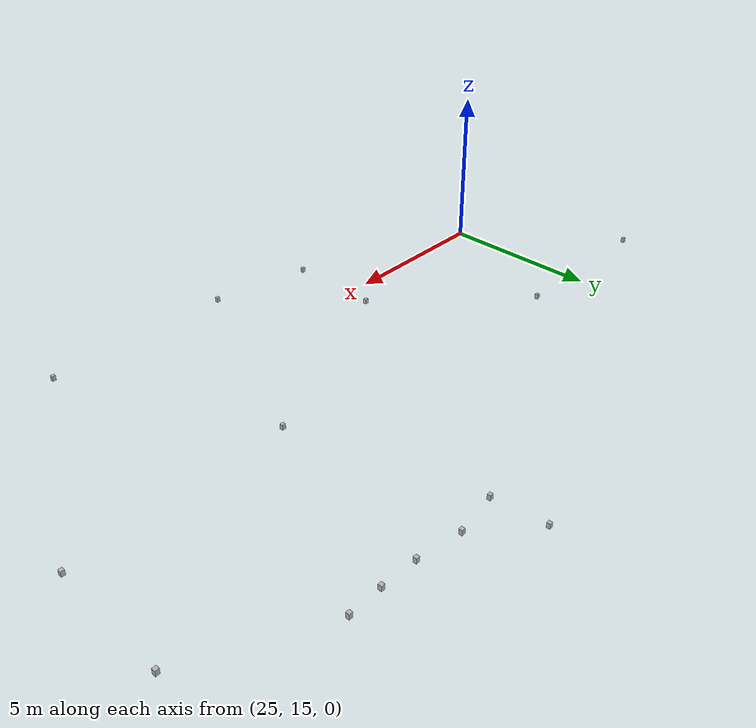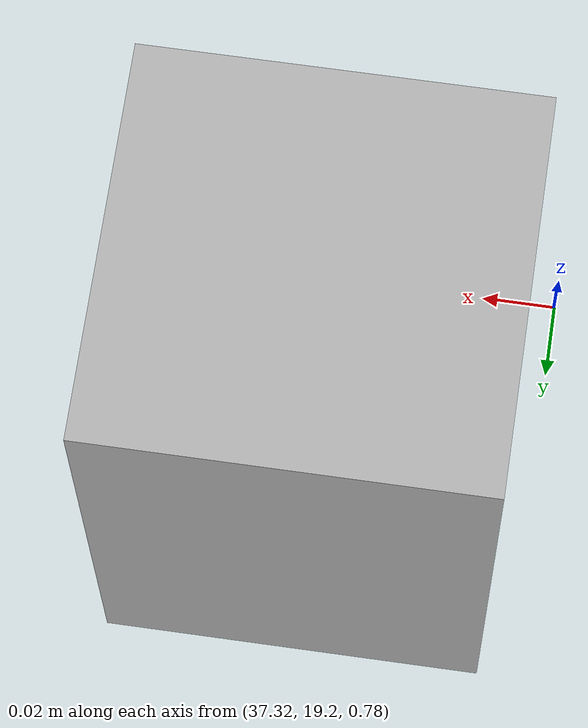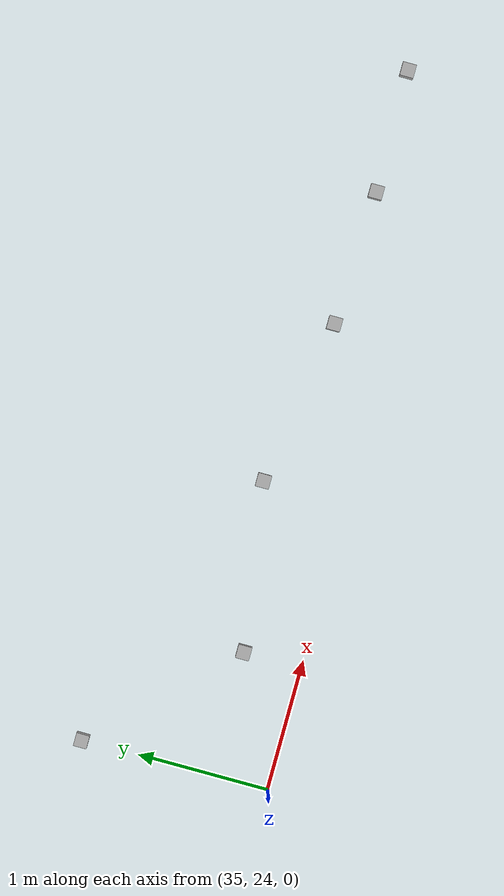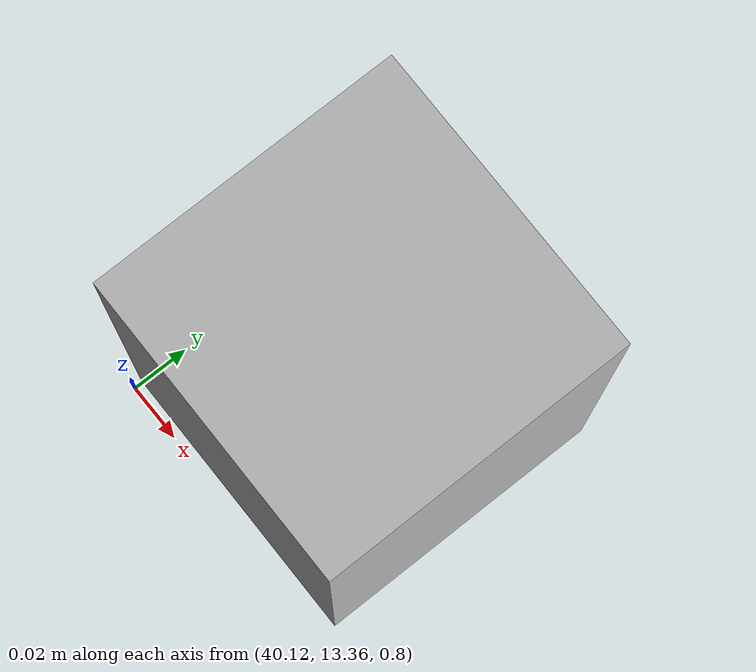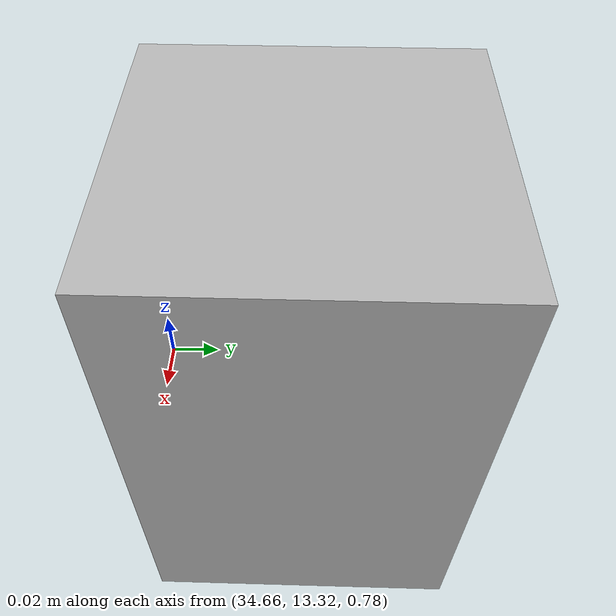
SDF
<sdf version="1.6">
 <world name="world">
  <model name="ground_plane">
   <static>1</static>
   <link name="link">
    <collision name="collision">
     <geometry><plane><normal>0 0 1</normal><size>100 100</size></plane></geometry>
     <surface><friction><ode><mu>100</mu><mu2>50</mu2></ode></friction></surface>
    </collision>
    <velocity_decay><linear>0</linear><angular>0</angular></velocity_decay>
   </link>
  </model>
  <physics name="default_physics" default="0" type="ode">
   <max_step_size>0.001</max_step_size>
   <real_time_factor>1</real_time_factor>
   <real_time_update_rate>1000</real_time_update_rate>
  </physics>
  <scene><ambient>0.4 0.4 0.4 1</ambient><background>0.7 0.7 0.7 1</background><shadows>1</shadows></scene>
  <gravity>0 0 -9.8</gravity>
  <magnetic_field>6e-06 2.3e-05 -4.2e-05</magnetic_field>
  <atmosphere type="adiabatic"/>
  <spherical_coordinates>
   <surface_model>EARTH_WGS84</surface_model>
   <latitude_deg>0</latitude_deg>
   <longitude_deg>0</longitude_deg>
   <elevation>0</elevation>
   <heading_deg>0</heading_deg>
  </spherical_coordinates>
  <light name="user_point_light_0" type="point">
   <pose>37.122 19.3882 1 0 -0 0</pose>
   <diffuse>0.5 0.5 0.5 1</diffuse>
   <specular>0.1 0.1 0.1 1</specular>
   <attenuation>
    <range>20</range>
    <constant>0.5</constant>
    <linear>0.01</linear>
    <quadratic>0.001</quadratic>
   </attenuation>
   <cast_shadows>0</cast_shadows>
   <direction>0 0 -1</direction>
  </light>
  <model name="tea_box_0">
   <link name="link">
    <pose>0 0 0.075 0 -0 0</pose>
    <inertial>
     <mass>0.39</mass>
     <inertia>
      <ixx>0.000264062</ixx>
      <ixy>0</ixy>
      <ixz>0</ixz>
      <iyy>0.000264062</iyy>
      <iyz>0</iyz>
      <izz>0.0001625</izz>
     </inertia>
    </inertial>
    <visual name="visual">
     <geometry><box><size>0.1 0.1 0.15</size></box></geometry>
     <material>
      <script>
       <uri>model://tea_box/materials/scripts</uri>
       <uri>model://tea_box/materials/textures</uri>
       <name>tea_pat</name>
      </script>
     </material>
    </visual>
    <collision name="collision"><geometry><box><size>0.1 0.1 0.15</size></box></geometry></collision>
   </link>
   <pose>37.3782 19.2551 0.775 -1.6e-05 2e-06 -0.000194</pose>
  </model>
  <model name="tea_box_0_clone_clone_0">
   <link name="link">
    <pose>0 0 0.075 0 -0 0</pose>
    <inertial>
     <mass>0.39</mass>
     <inertia>
      <ixx>0.000264062</ixx>
      <ixy>0</ixy>
      <ixz>0</ixz>
      <iyy>0.000264062</iyy>
      <iyz>0</iyz>
      <izz>0.0001625</izz>
     </inertia>
    </inertial>
    <visual name="visual">
     <geometry><box><size>0.1 0.1 0.15</size></box></geometry>
     <material>
      <script>
       <uri>model://tea_box/materials/scripts</uri>
       <uri>model://tea_box/materials/textures</uri>
       <name>tea_pat</name>
      </script>
     </material>
    </visual>
    <collision name="collision"><geometry><box><size>0.1 0.1 0.15</size></box></geometry></collision>
   </link>
   <pose>28.1753 20.3532 0.890217 3e-06 -1.1e-05 -0.005102</pose>
  </model>
  <model name="tea_box_0_clone_clone_0_clone">
   <link name="link">
    <pose>0 0 0.075 0 -0 0</pose>
    <inertial>
     <mass>0.39</mass>
     <inertia>
      <ixx>0.000264062</ixx>
      <ixy>0</ixy>
      <ixz>0</ixz>
      <iyy>0.000264062</iyy>
      <iyz>0</iyz>
      <izz>0.0001625</izz>
     </inertia>
    </inertial>
    <visual name="visual">
     <geometry><box><size>0.1 0.1 0.15</size></box></geometry>
     <material>
      <script>
       <uri>model://tea_box/materials/scripts</uri>
       <uri>model://tea_box/materials/textures</uri>
       <name>tea_pat</name>
      </script>
     </material>
    </visual>
    <collision name="collision"><geometry><box><size>0.1 0.1 0.15</size></box></geometry></collision>
   </link>
   <pose>23.155 20.3624 0.890217 1e-06 -2e-06 -0.000958</pose>
  </model>
  <model name="tea_box_1">
   <link name="link">
    <pose>0 0 0.075 0 -0 0</pose>
    <inertial>
     <mass>0.39</mass>
     <inertia>
      <ixx>0.000264062</ixx>
      <ixy>0</ixy>
      <ixz>0</ixz>
      <iyy>0.000264062</iyy>
      <iyz>0</iyz>
      <izz>0.0001625</izz>
     </inertia>
    </inertial>
    <visual name="visual">
     <geometry><box><size>0.1 0.1 0.15</size></box></geometry>
     <material>
      <script>
       <uri>model://tea_box/materials/scripts</uri>
       <uri>model://tea_box/materials/textures</uri>
       <name>tea_pat</name>
      </script>
     </material>
    </visual>
    <collision name="collision"><geometry><box><size>0.1 0.1 0.15</size></box></geometry></collision>
   </link>
   <pose>31.8584 14.0561 0.884766 -0.014718 1.3e-05 0.00111</pose>
  </model>
  <model name="tea_box_1_clone">
   <link name="link">
    <pose>0 0 0.075 0 -0 0</pose>
    <inertial>
     <mass>0.39</mass>
     <inertia>
      <ixx>0.000264062</ixx>
      <ixy>0</ixy>
      <ixz>0</ixz>
      <iyy>0.000264062</iyy>
      <iyz>0</iyz>
      <izz>0.0001625</izz>
     </inertia>
    </inertial>
    <visual name="visual">
     <geometry><box><size>0.1 0.1 0.15</size></box></geometry>
     <material>
      <script>
       <uri>model://tea_box/materials/scripts</uri>
       <uri>model://tea_box/materials/textures</uri>
       <name>tea_pat</name>
      </script>
     </material>
    </visual>
    <collision name="collision"><geometry><box><size>0.1 0.1 0.15</size></box></geometry></collision>
   </link>
   <pose>31.8687 16.8047 0.884736 -0.014708 -0 -0.001277</pose>
  </model>
  <model name="tea_box_1_clone_0">
   <link name="link">
    <pose>0 0 0.075 0 -0 0</pose>
    <inertial>
     <mass>0.39</mass>
     <inertia>
      <ixx>0.000264062</ixx>
      <ixy>0</ixy>
      <ixz>0</ixz>
      <iyy>0.000264062</iyy>
      <iyz>0</iyz>
      <izz>0.0001625</izz>
     </inertia>
    </inertial>
    <visual name="visual">
     <geometry><box><size>0.1 0.1 0.15</size></box></geometry>
     <material>
      <script>
       <uri>model://tea_box/materials/scripts</uri>
       <uri>model://tea_box/materials/textures</uri>
       <name>tea_pat</name>
      </script>
     </material>
    </visual>
    <collision name="collision"><geometry><box><size>0.1 0.1 0.15</size></box></geometry></collision>
   </link>
   <pose>37.2268 24.6506 0.909 3.4e-05 -4e-06 2.9e-05</pose>
  </model>
  <model name="tea_box_1_clone_1">
   <link name="link">
    <pose>0 0 0.075 0 -0 0</pose>
    <inertial>
     <mass>0.39</mass>
     <inertia>
      <ixx>0.000264062</ixx>
      <ixy>0</ixy>
      <ixz>0</ixz>
      <iyy>0.000264062</iyy>
      <iyz>0</iyz>
      <izz>0.0001625</izz>
     </inertia>
    </inertial>
    <visual name="visual">
     <geometry><box><size>0.1 0.1 0.15</size></box></geometry>
     <material>
      <script>
       <uri>model://tea_box/materials/scripts</uri>
       <uri>model://tea_box/materials/textures</uri>
       <name>tea_pat</name>
      </script>
     </material>
    </visual>
    <collision name="collision"><geometry><box><size>0.1 0.1 0.15</size></box></geometry></collision>
   </link>
   <pose>35 25.4319 -3e-06 2e-06 -5.6e-05 -2.1e-05</pose>
  </model>
  <model name="tea_box_1_clone_0_clone">
   <link name="link">
    <pose>0 0 0.075 0 -0 0</pose>
    <inertial>
     <mass>0.39</mass>
     <inertia>
      <ixx>0.000264062</ixx>
      <ixy>0</ixy>
      <ixz>0</ixz>
      <iyy>0.000264062</iyy>
      <iyz>0</iyz>
      <izz>0.0001625</izz>
     </inertia>
    </inertial>
    <visual name="visual">
     <geometry><box><size>0.1 0.1 0.15</size></box></geometry>
     <material>
      <script>
       <uri>model://tea_box/materials/scripts</uri>
       <uri>model://tea_box/materials/textures</uri>
       <name>tea_pat</name>
      </script>
     </material>
    </visual>
    <collision name="collision"><geometry><box><size>0.1 0.1 0.15</size></box></geometry></collision>
   </link>
   <pose>36.0009 24.4606 0.909 -2e-06 -0 -0.00014</pose>
  </model>
  <model name="tea_box_1_clone_0_clone_0">
   <link name="link">
    <pose>0 0 0.075 0 -0 0</pose>
    <inertial>
     <mass>0.39</mass>
     <inertia>
      <ixx>0.000264062</ixx>
      <ixy>0</ixy>
      <ixz>0</ixz>
      <iyy>0.000264062</iyy>
      <iyz>0</iyz>
      <izz>0.0001625</izz>
     </inertia>
    </inertial>
    <visual name="visual">
     <geometry><box><size>0.1 0.1 0.15</size></box></geometry>
     <material>
      <script>
       <uri>model://tea_box/materials/scripts</uri>
       <uri>model://tea_box/materials/textures</uri>
       <name>tea_pat</name>
      </script>
     </material>
    </visual>
    <collision name="collision"><geometry><box><size>0.1 0.1 0.15</size></box></geometry></collision>
   </link>
   <pose>38.4516 24.4582 0.909 -2e-06 -0 -0.00014</pose>
  </model>
  <model name="tea_box_1_clone_0_clone_1">
   <link name="link">
    <pose>0 0 0.075 0 -0 0</pose>
    <inertial>
     <mass>0.39</mass>
     <inertia>
      <ixx>0.000264062</ixx>
      <ixy>0</ixy>
      <ixz>0</ixz>
      <iyy>0.000264062</iyy>
      <iyz>0</iyz>
      <izz>0.0001625</izz>
     </inertia>
    </inertial>
    <visual name="visual">
     <geometry><box><size>0.1 0.1 0.15</size></box></geometry>
     <material>
      <script>
       <uri>model://tea_box/materials/scripts</uri>
       <uri>model://tea_box/materials/textures</uri>
       <name>tea_pat</name>
      </script>
     </material>
    </visual>
    <collision name="collision"><geometry><box><size>0.1 0.1 0.15</size></box></geometry></collision>
   </link>
   <pose>39.4439 24.4207 0.909 -2e-06 -0 -0.00014</pose>
  </model>
  <model name="tea_box_1_clone_0_clone_2">
   <link name="link">
    <pose>0 0 0.075 0 -0 0</pose>
    <inertial>
     <mass>0.39</mass>
     <inertia>
      <ixx>0.000264062</ixx>
      <ixy>0</ixy>
      <ixz>0</ixz>
      <iyy>0.000264062</iyy>
      <iyz>0</iyz>
      <izz>0.0001625</izz>
     </inertia>
    </inertial>
    <visual name="visual">
     <geometry><box><size>0.1 0.1 0.15</size></box></geometry>
     <material>
      <script>
       <uri>model://tea_box/materials/scripts</uri>
       <uri>model://tea_box/materials/textures</uri>
       <name>tea_pat</name>
      </script>
     </material>
    </visual>
    <collision name="collision"><geometry><box><size>0.1 0.1 0.15</size></box></geometry></collision>
   </link>
   <pose>40.3473 24.4329 0.909 0 -2e-06 4.6e-05</pose>
  </model>
  <model name="tea_box_1_clone_0_clone_2_clone">
   <link name="link">
    <pose>0 0 0.075 0 -0 0</pose>
    <inertial>
     <mass>0.39</mass>
     <inertia>
      <ixx>0.000264062</ixx>
      <ixy>0</ixy>
      <ixz>0</ixz>
      <iyy>0.000264062</iyy>
      <iyz>0</iyz>
      <izz>0.0001625</izz>
     </inertia>
    </inertial>
    <visual name="visual">
     <geometry><box><size>0.1 0.1 0.15</size></box></geometry>
     <material>
      <script>
       <uri>model://tea_box/materials/scripts</uri>
       <uri>model://tea_box/materials/textures</uri>
       <name>tea_pat</name>
      </script>
     </material>
    </visual>
    <collision name="collision"><geometry><box><size>0.1 0.1 0.15</size></box></geometry></collision>
   </link>
   <pose>43.494 19.5521 0.886795 -2.4e-05 -4e-06 -0.001836</pose>
  </model>
  <model name="tea_box_1_clone_0_clone_2_clone_clone">
   <link name="link">
    <pose>0 0 0.075 0 -0 0</pose>
    <inertial>
     <mass>0.39</mass>
     <inertia>
      <ixx>0.000264062</ixx>
      <ixy>0</ixy>
      <ixz>0</ixz>
      <iyy>0.000264062</iyy>
      <iyz>0</iyz>
      <izz>0.0001625</izz>
     </inertia>
    </inertial>
    <visual name="visual">
     <geometry><box><size>0.1 0.1 0.15</size></box></geometry>
     <material>
      <script>
       <uri>model://tea_box/materials/scripts</uri>
       <uri>model://tea_box/materials/textures</uri>
       <name>tea_pat</name>
      </script>
     </material>
    </visual>
    <collision name="collision"><geometry><box><size>0.1 0.1 0.15</size></box></geometry></collision>
   </link>
   <pose>43.5376 22.7818 0.886799 -0.000127 -3.1e-05 0.051769</pose>
  </model>
  <model name="tea_box_0_clone_clone">
   <link name="link">
    <pose>0 0 0.075 0 -0 0</pose>
    <inertial>
     <mass>0.39</mass>
     <inertia>
      <ixx>0.000264062</ixx>
      <ixy>0</ixy>
      <ixz>0</ixz>
      <iyy>0.000264062</iyy>
      <iyz>0</iyz>
      <izz>0.0001625</izz>
     </inertia>
    </inertial>
    <visual name="visual">
     <geometry><box><size>0.1 0.1 0.15</size></box></geometry>
     <material>
      <script>
       <uri>model://tea_box/materials/scripts</uri>
       <uri>model://tea_box/materials/textures</uri>
       <name>tea_pat</name>
      </script>
     </material>
    </visual>
    <collision name="collision"><geometry><box><size>0.1 0.1 0.15</size></box></geometry></collision>
   </link>
   <pose>34.7145 13.3795 0.775063 -1.6e-05 2e-06 -0.000196</pose>
  </model>
  <model name="tea_box_0_clone_clone_2_clone">
   <link name="link">
    <pose>0 0 0.075 0 -0 0</pose>
    <inertial>
     <mass>0.39</mass>
     <inertia>
      <ixx>0.000264062</ixx>
      <ixy>0</ixy>
      <ixz>0</ixz>
      <iyy>0.000264062</iyy>
      <iyz>0</iyz>
      <izz>0.0001625</izz>
     </inertia>
    </inertial>
    <visual name="visual">
     <geometry><box><size>0.1 0.1 0.15</size></box></geometry>
     <material>
      <script>
       <uri>model://tea_box/materials/scripts</uri>
       <uri>model://tea_box/materials/textures</uri>
       <name>tea_pat</name>
      </script>
     </material>
    </visual>
    <collision name="collision"><geometry><box><size>0.1 0.1 0.15</size></box></geometry></collision>
   </link>
   <pose>40.1675 13.4133 0.791802 -2e-06 5.6e-05 -0.000157</pose>
  </model>
 </world>
</sdf>
